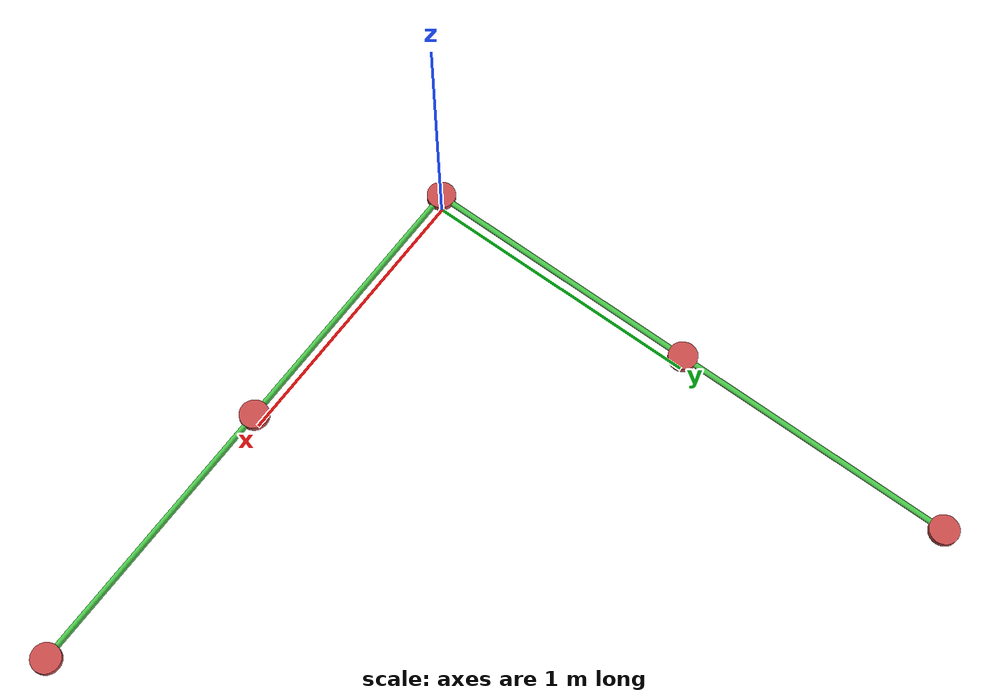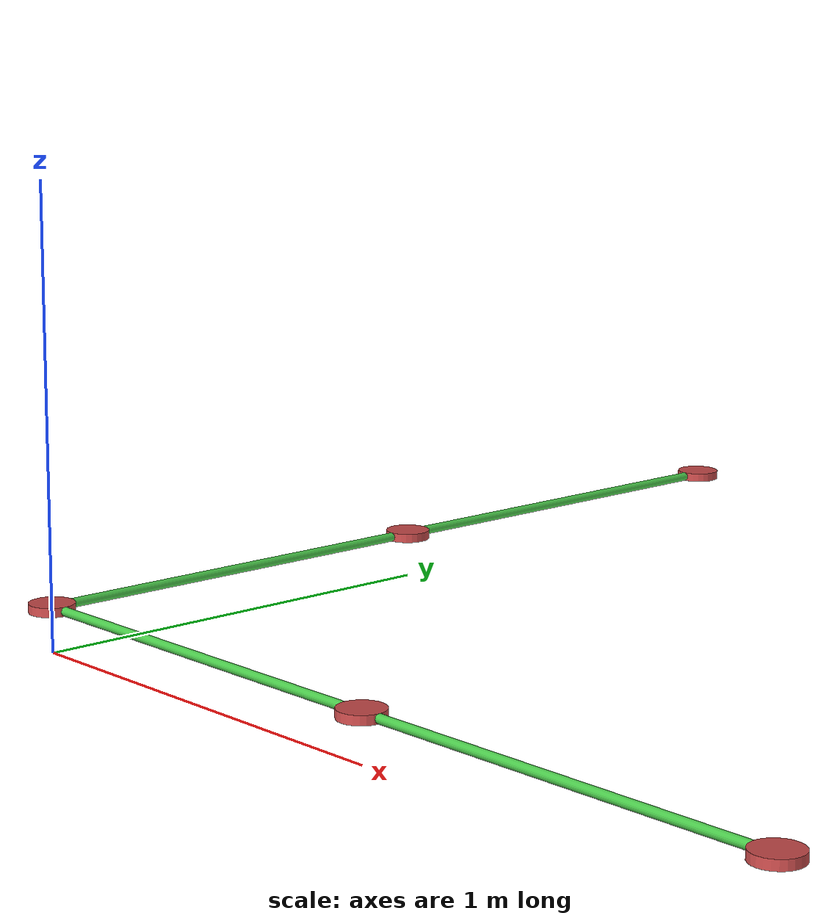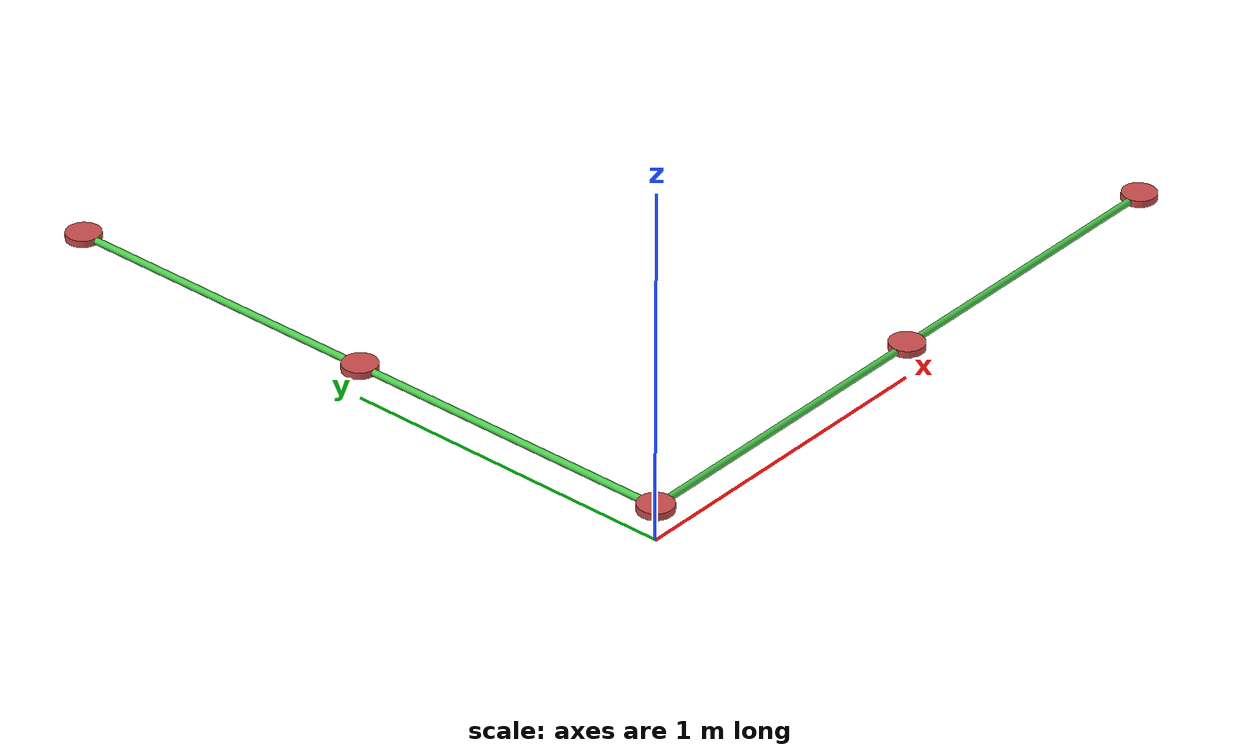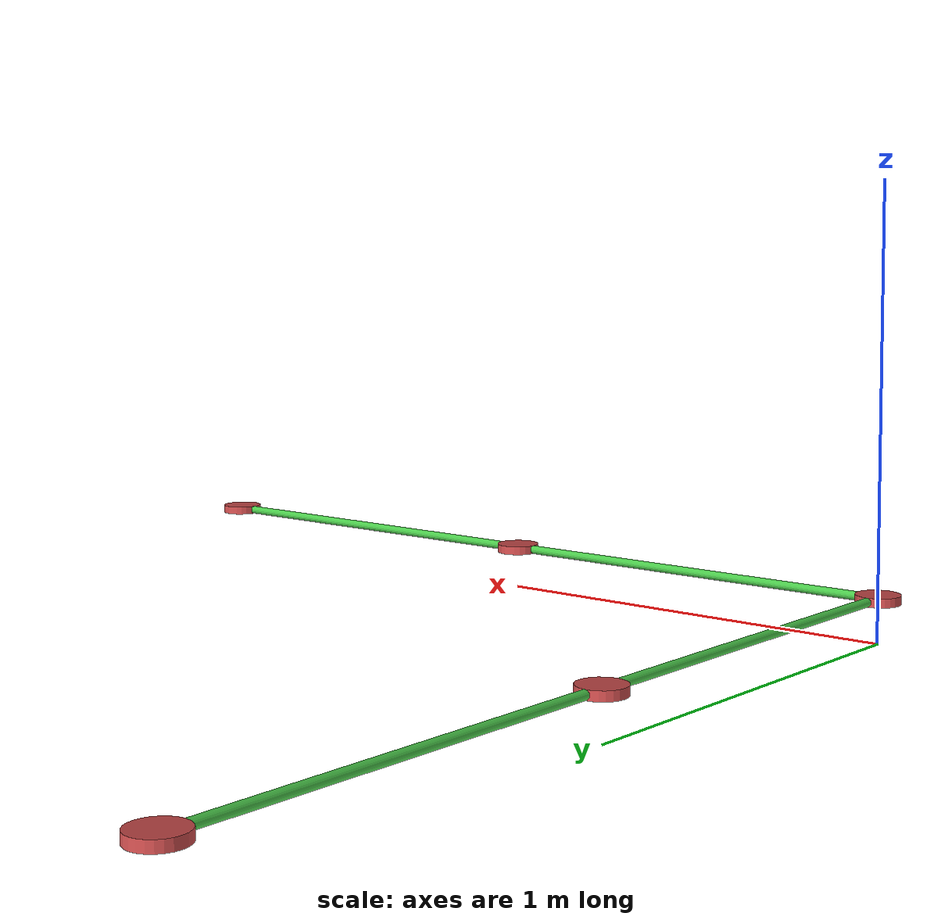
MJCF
<?xml version='1.0' encoding='UTF-8'?>
<mujoco>
  <option gravity="0 0 -9.81" timestep="0.002">
    <flag warmstart="enable"/>
  </option>
  <visual>
    <global offwidth="800" offheight="800"/>
    <quality shadowsize="4096"/>
    <map force="0.1" fogstart="3" fogend="5" znear="0.1" zfar="50"/>
  </visual>
  <asset>
    <texture type="skybox" builtin="gradient" rgb1="0.3 0.5 0.7" rgb2="0 0 0" width="512" height="512"/>
    <material name="arm1" rgba="0.8 0.3 0.3 1"/>
    <material name="arm2" rgba="0.3 0.8 0.3 1"/>
    <material name="arm3" rgba="0.3 0.3 0.8 1"/>
  </asset>
  <option gravity="0 0 -9.81" timestep="0.001">
    <flag warmstart="enable"/>
  </option>
  <default>
    <joint damping="1.0" armature="0.1" frictionloss="0.1"/>
  </default>
  <worldbody>
    <body name="base" pos="0.0 0.0 0.1">
      <geom name="base_geom" type="cylinder" size="0.05 0.01" material="arm1"/>
      <joint name="joint1" type="hinge" axis="0 0 1" pos="0 0 -0.05"/>
      <site name="site_1" pos="0 0 0"/>
      <body name="link2" pos="1.0 0.0 0">
        <geom name="link2_geom" type="cylinder" size="0.05 0.01" material="arm1"/>
        <joint name="joint2" type="hinge" axis="0 0 1" pos="0 0 -0.05"/>
        <site name="site_2" pos="0 0 0"/>
        <geom name="capsule_2_4" type="capsule" fromto="0 0 0 1.0 0.0 0.0" size="0.01" material="arm2"/>
        <site name="conn_site_2_4" pos="1.0 0.0 0.0"/>
      </body>
      <geom name="capsule_1_2" type="capsule" fromto="0 0 0 1.0 0.0 0" size="0.01" material="arm2"/>
      <body name="link3" pos="0.0 1.0 0">
        <geom name="link3_geom" type="cylinder" size="0.05 0.01" material="arm1"/>
        <joint name="joint3" type="hinge" axis="0 0 1" pos="0 0 -0.05"/>
        <site name="site_3" pos="0 0 0"/>
        <geom name="capsule_3_5" type="capsule" fromto="0 0 0 0.0 1.0 0.0" size="0.01" material="arm2"/>
        <site name="conn_site_3_5" pos="0.0 1.0 0.0"/>
      </body>
      <geom name="capsule_1_3" type="capsule" fromto="0 0 0 0.0 1.0 0" size="0.01" material="arm2"/>
    </body>
    <body name="end4" pos="2.0 0.0 0.1">
      <geom name="end4_geom" type="cylinder" size="0.05 0.01" material="arm1"/>
      <site name="site_4" pos="0 0 0"/>
    </body>
    <body name="end5" pos="0.0 2.0 0.1">
      <geom name="end5_geom" type="cylinder" size="0.05 0.01" material="arm1"/>
      <site name="site_5" pos="0 0 0"/>
    </body>
  </worldbody>
  <tendon>
    <spatial name="tendon_2_4" limited="true" range="0 0.0001" width="0.003" rgba="0.8 0.8 0.8 1">
      <site site="conn_site_2_4"/>
      <site site="site_4"/>
    </spatial>
    <spatial name="tendon_3_5" limited="true" range="0 0.0001" width="0.003" rgba="0.8 0.8 0.8 1">
      <site site="conn_site_3_5"/>
      <site site="site_5"/>
    </spatial>
  </tendon>
  <actuator>
    <position name="pos_joint1" joint="joint1" kp="10.0" ctrlrange="-3.14159 3.14159"/>
    <velocity name="vel_joint1" joint="joint1" kv="1.0"/>
    <position name="pos_joint2" joint="joint2" kp="10.0" ctrlrange="-3.14159 3.14159"/>
    <velocity name="vel_joint2" joint="joint2" kv="1.0"/>
    <position name="pos_joint3" joint="joint3" kp="10.0" ctrlrange="-3.14159 3.14159"/>
    <velocity name="vel_joint3" joint="joint3" kv="1.0"/>
  </actuator>
</mujoco>
